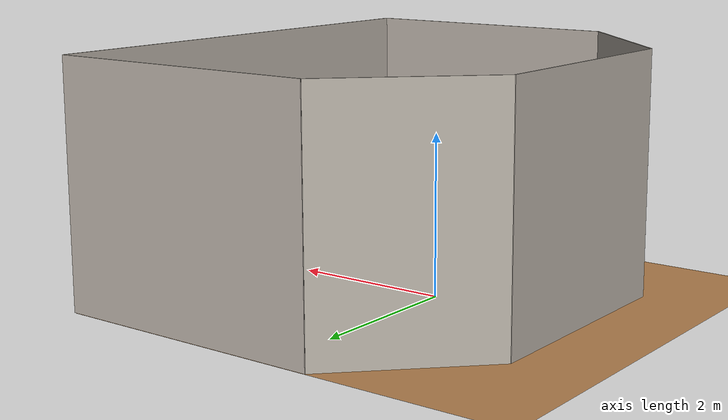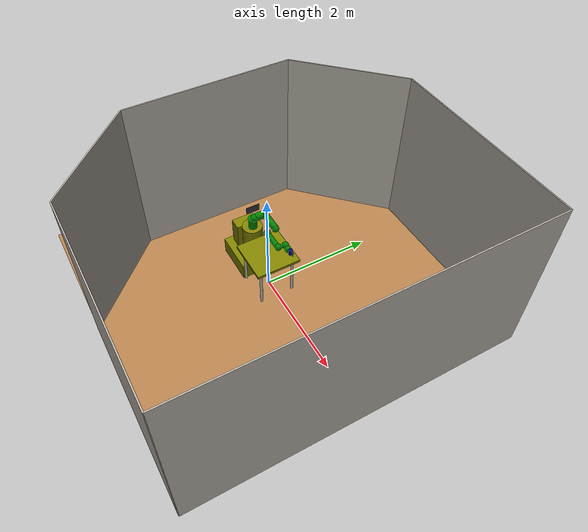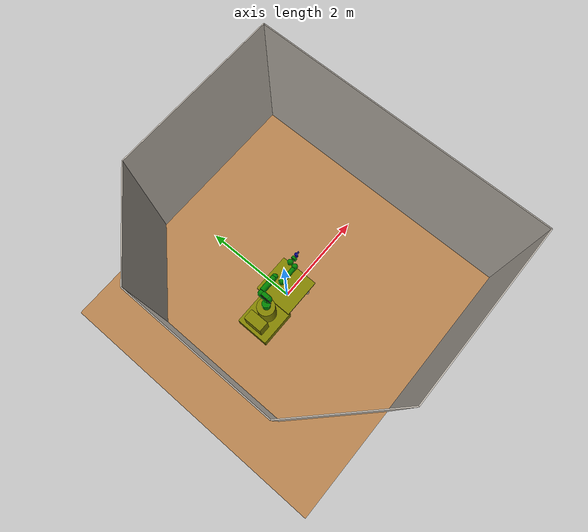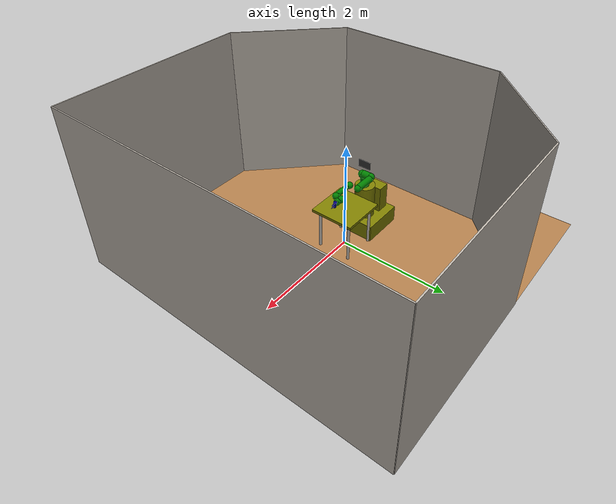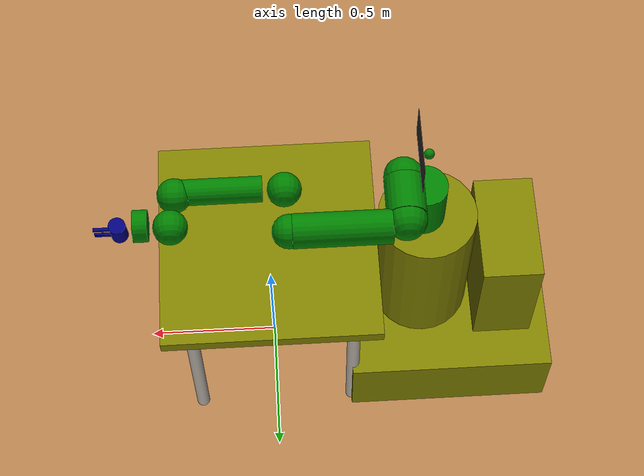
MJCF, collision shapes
<mujoco model="base">
    <compiler angle="radian" meshdir="meshes/" />
    <option impratio="20" density="1.2" viscosity="2e-05" cone="elliptic" />
    <size njmax="5000" nconmax="5000" />
    <visual>
        <map znear="0.001" />
    </visual>
    <asset>
        <texture type="skybox" builtin="gradient" rgb1="0.9 0.9 1" rgb2="0.2 0.3 0.4" width="256" height="1536" />
        <texture type="2d" name="texplane" file="/home/tarunc/anaconda3/envs/moparl/lib/python3.8/site-packages/robosuite/models/assets/arenas/../textures/wood-tiles.png" />
        <texture type="cube" name="tex-ceramic" file="/home/tarunc/anaconda3/envs/moparl/lib/python3.8/site-packages/robosuite/models/assets/arenas/../textures/ceramic.png" />
        <texture type="cube" name="tex-steel-brushed" file="/home/tarunc/anaconda3/envs/moparl/lib/python3.8/site-packages/robosuite/models/assets/arenas/../textures/steel-brushed.png" />
        <texture type="2d" name="tex-cream-plaster" file="/home/tarunc/anaconda3/envs/moparl/lib/python3.8/site-packages/robosuite/models/assets/arenas/../textures/cream-plaster.png" />
        <texture type="cube" name="textable" builtin="flat" rgb1="0.5 0.5 0.5" width="512" height="3072" />
        <texture type="cube" name="cube_redwood" file="/home/tarunc/anaconda3/envs/moparl/lib/python3.8/site-packages/robosuite/models/assets/textures/red-wood.png" />
        <material name="floorplane" texture="texplane" texuniform="true" texrepeat="2 2" specular="0" shininess="0" reflectance="0.01" />
        <material name="table_ceramic" texture="tex-ceramic" specular="0.2" shininess="0" />
        <material name="table_legs_metal" texture="tex-steel-brushed" shininess="0.8" reflectance="0.8" />
        <material name="walls_mat" texture="tex-cream-plaster" texuniform="true" texrepeat="3 3" specular="0.1" shininess="0.1" />
        <material name="table_mat" texture="textable" />
        <material name="cube_redwood_mat" texture="cube_redwood" specular="0.4" shininess="0.1" />
        <mesh name="robot0_base" file="/home/tarunc/anaconda3/envs/moparl/lib/python3.8/site-packages/robosuite/models/assets/robots/sawyer/meshes/base.stl" />
        <mesh name="robot0_l0" file="/home/tarunc/anaconda3/envs/moparl/lib/python3.8/site-packages/robosuite/models/assets/robots/sawyer/meshes/l0.stl" />
        <mesh name="robot0_head" file="/home/tarunc/anaconda3/envs/moparl/lib/python3.8/site-packages/robosuite/models/assets/robots/sawyer/meshes/head.stl" />
        <mesh name="robot0_l1" file="/home/tarunc/anaconda3/envs/moparl/lib/python3.8/site-packages/robosuite/models/assets/robots/sawyer/meshes/l1.stl" />
        <mesh name="robot0_l2" file="/home/tarunc/anaconda3/envs/moparl/lib/python3.8/site-packages/robosuite/models/assets/robots/sawyer/meshes/l2.stl" />
        <mesh name="robot0_l3" file="/home/tarunc/anaconda3/envs/moparl/lib/python3.8/site-packages/robosuite/models/assets/robots/sawyer/meshes/l3.stl" />
        <mesh name="robot0_l4" file="/home/tarunc/anaconda3/envs/moparl/lib/python3.8/site-packages/robosuite/models/assets/robots/sawyer/meshes/l4.stl" />
        <mesh name="robot0_l5" file="/home/tarunc/anaconda3/envs/moparl/lib/python3.8/site-packages/robosuite/models/assets/robots/sawyer/meshes/l5.stl" />
        <mesh name="robot0_l6" file="/home/tarunc/anaconda3/envs/moparl/lib/python3.8/site-packages/robosuite/models/assets/robots/sawyer/meshes/l6.stl" />
        <mesh name="mount0_pedestal" file="/home/tarunc/anaconda3/envs/moparl/lib/python3.8/site-packages/robosuite/models/assets/mounts/meshes/rethink_mount/pedestal.stl" />
        <mesh name="gripper0_electric_gripper_base" file="/home/tarunc/anaconda3/envs/moparl/lib/python3.8/site-packages/robosuite/models/assets/grippers/meshes/rethink_gripper/electric_gripper_base.stl" />
        <mesh name="gripper0_standard_narrow" file="/home/tarunc/anaconda3/envs/moparl/lib/python3.8/site-packages/robosuite/models/assets/grippers/meshes/rethink_gripper/standard_narrow.stl" />
        <mesh name="gripper0_half_round_tip" file="/home/tarunc/anaconda3/envs/moparl/lib/python3.8/site-packages/robosuite/models/assets/grippers/meshes/rethink_gripper/half_round_tip.stl" />
        <mesh name="gripper0_connector_plate" file="/home/tarunc/anaconda3/envs/moparl/lib/python3.8/site-packages/robosuite/models/assets/grippers/meshes/rethink_gripper/connector_plate.stl" />
    </asset>
    <worldbody>
        <geom name="floor" size="3 3 0.125" type="plane" material="floorplane" />
        <geom name="wall_leftcorner_visual" size="1.06 1.5 0.01" pos="-1.25 2.25 1.5" quat="0.653281 0.653281 0.270598 0.270598" type="box" contype="0" conaffinity="0" group="1" material="walls_mat" />
        <geom name="wall_rightcorner_visual" size="1.06 1.5 0.01" pos="-1.25 -2.25 1.5" quat="0.653281 0.653281 -0.270598 -0.270598" type="box" contype="0" conaffinity="0" group="1" material="walls_mat" />
        <geom name="wall_left_visual" size="1.75 1.5 0.01" pos="1.25 3 1.5" quat="0.707107 0.707107 0 0" type="box" contype="0" conaffinity="0" group="1" material="walls_mat" />
        <geom name="wall_right_visual" size="1.75 1.5 0.01" pos="1.25 -3 1.5" quat="0.707107 -0.707107 0 0" type="box" contype="0" conaffinity="0" group="1" material="walls_mat" />
        <geom name="wall_rear_visual" size="1.5 1.5 0.01" pos="-2 0 1.5" quat="0.5 0.5 0.5 0.5" type="box" contype="0" conaffinity="0" group="1" material="walls_mat" />
        <geom name="wall_front_visual" size="3 1.5 0.01" pos="3 0 1.5" quat="0.5 0.5 -0.5 -0.5" type="box" contype="0" conaffinity="0" group="1" material="walls_mat" />
        <camera name="frontview" pos="1.6 0 1.45" quat="0.56 0.43 0.43 0.56" />
        <camera name="birdview" pos="-0.2 0 3" quat="0.7071 0 0 0.7071" />
        <camera name="agentview" pos="0.5 0 1.35" quat="0.653 0.271 0.271 0.653" />
        <camera name="sideview" pos="-0.0565177 1.27612 1.48796" quat="0.00990507 0.00687796 0.591223 0.806418" />
        <light name="light1" pos="1 1 4" dir="0 -0.14834 -0.988936" castshadow="false" diffuse="0.8 0.8 0.8" />
        <light name="light2" pos="-3 -3 4" dir="0 -0.14834 -0.988936" castshadow="false" diffuse="0.8 0.8 0.8" />
        <body name="table" pos="0 0 0.775">
            <inertial pos="0 0 0" mass="32" diaginertia="1.71333 1.71333 3.41333" />
            <geom name="table_collision" size="0.4 0.4 0.025" type="box" rgba="0.5 0.5 0 1" />
            <geom name="table_visual" size="0.4 0.4 0.025" type="box" contype="0" conaffinity="0" group="1" material="table_ceramic" />
            <geom name="table_leg1_visual" size="0.025 0.3875" pos="0.3 0.3 -0.3875" type="cylinder" contype="0" conaffinity="0" group="1" material="table_legs_metal" />
            <geom name="table_leg2_visual" size="0.025 0.3875" pos="-0.3 0.3 -0.3875" type="cylinder" contype="0" conaffinity="0" group="1" material="table_legs_metal" />
            <geom name="table_leg3_visual" size="0.025 0.3875" pos="-0.3 -0.3 -0.3875" type="cylinder" contype="0" conaffinity="0" group="1" material="table_legs_metal" />
            <geom name="table_leg4_visual" size="0.025 0.3875" pos="0.3 -0.3 -0.3875" type="cylinder" contype="0" conaffinity="0" group="1" material="table_legs_metal" />
            <site name="table_top" pos="0 0 0.025" size="0.001" rgba="0 0 0 0" />
        </body>
        <body name="robot0_base" pos="-0.56 0 0.912">
            <inertial pos="0 0 0" mass="0" diaginertia="0 0 0" />
            <camera name="robot0_robotview" pos="1 0 0.4" quat="0.653 0.271 0.271 0.653" />
            <body name="robot0_right_arm_base_link" pos="0 0 0">
                <inertial pos="-0.0006241 -2.8025e-05 0.065404" quat="-0.209285 0.674441 0.227335 0.670558" mass="2.0687" diaginertia="0.00740351 0.00681776 0.00672942" />
                <geom name="robot0_base_vis" type="mesh" contype="0" conaffinity="0" group="1" rgba="0.5 0.1 0.1 1" mesh="robot0_base" />
                <geom name="robot0_base_col" size="0.08 0.12" pos="0 0 0.12" type="cylinder" rgba="0 0.5 0 1" />
                <body name="robot0_right_l0" pos="0 0 0.08">
                    <inertial pos="0.024366 0.010969 0.14363" quat="0.894823 0.00899958 -0.170275 0.412573" mass="5.3213" diaginertia="0.0651588 0.0510944 0.0186218" />
                    <joint name="robot0_right_j0" pos="0 0 0" axis="0 0 1" limited="true" range="-3.0503 3.0503" armature="5" damping="0.1" frictionloss="0.1" />
                    <geom name="robot0_link0_visual" type="mesh" contype="0" conaffinity="0" group="1" rgba="0.5 0.1 0.1 1" mesh="robot0_l0" />
                    <geom name="robot0_link0_collision" size="0.07" pos="0.08 0 0.23" rgba="0 0.5 0 1" />
                    <body name="robot0_head" pos="0 0 0.2965">
                        <inertial pos="0.0053207 -2.6549e-05 0.1021" quat="0.999993 7.08405e-05 -0.00359857 -0.000626247" mass="1.5795" diaginertia="0.0118334 0.00827089 0.00496574" />
                        <geom name="robot0_head_visual" type="mesh" contype="0" conaffinity="0" group="1" rgba="0.5 0.1 0.1 1" mesh="robot0_head" />
                        <geom name="robot0_head_collision" size="0.018" pos="0 0 0.08" rgba="0 0.5 0 1" />
                        <body name="robot0_screen" pos="0.03 0 0.105" quat="0.5 0.5 0.5 0.5">
                            <inertial pos="0 0 0" mass="0.0001" diaginertia="1e-08 1e-08 1e-08" />
                            <geom name="robot0_screen_visual" size="0.12 0.07 0.001" type="box" contype="0" conaffinity="0" group="1" rgba="0.2 0.2 0.2 1" />
                            <geom name="robot0_screen_collision" size="0.001" rgba="0 0.5 0 1" />
                        </body>
                        <body name="robot0_head_camera" pos="0.0228027 0 0.216572" quat="0.342813 -0.618449 0.618449 -0.342813">
                            <inertial pos="0.0228027 0 0.216572" quat="0.342813 -0.618449 0.618449 -0.342813" mass="0" diaginertia="0 0 0" />
                        </body>
                    </body>
                    <body name="robot0_right_torso_itb" pos="-0.055 0 0.22" quat="0.707107 0 -0.707107 0">
                        <inertial pos="0 0 0" mass="0.0001" diaginertia="1e-08 1e-08 1e-08" />
                    </body>
                    <body name="robot0_right_l1" pos="0.081 0.05 0.237" quat="0.5 -0.5 0.5 0.5">
                        <inertial pos="-0.0030849 -0.026811 0.092521" quat="0.424888 0.891987 0.132364 -0.0794296" mass="4.505" diaginertia="0.0224339 0.0221624 0.0097097" />
                        <joint name="robot0_right_j1" pos="0 0 0" axis="0 0 1" limited="true" range="-3.8095 2.2736" armature="2.5" damping="0.1" frictionloss="0.1" />
                        <geom name="robot0_link1_visual" type="mesh" contype="0" conaffinity="0" group="1" rgba="0.5 0.1 0.1 1" mesh="robot0_l1" />
                        <geom name="robot0_link1_collision" size="0.07" pos="0 0 0.1225" rgba="0 0.5 0 1" />
                        <body name="robot0_right_l2" pos="0 -0.14 0.1425" quat="0.707107 0.707107 0 0">
                            <inertial pos="-0.00016044 -0.014967 0.13582" quat="0.707831 -0.0524761 0.0516007 0.702537" mass="1.745" diaginertia="0.0257928 0.025506 0.00292515" />
                            <joint name="robot0_right_j2" pos="0 0 0" axis="0 0 1" limited="true" range="-3.0426 3.0426" armature="1.66667" damping="0.1" frictionloss="0.1" />
                            <geom name="robot0_link2_visual" type="mesh" contype="0" conaffinity="0" group="1" rgba="0.5 0.1 0.1 1" mesh="robot0_l2" />
                            <geom name="robot0_link2_collision" size="0.06 0.17" pos="0 0 0.08" type="cylinder" rgba="0 0.5 0 1" />
                            <body name="robot0_right_l3" pos="0 -0.042 0.26" quat="0.707107 -0.707107 0 0">
                                <inertial pos="-0.0048135 -0.0281 -0.084154" quat="0.902999 0.385391 -0.0880901 0.168247" mass="2.5097" diaginertia="0.0102404 0.0096997 0.00369622" />
                                <joint name="robot0_right_j3" pos="0 0 0" axis="0 0 1" limited="true" range="-3.0439 3.0439" armature="1.25" damping="0.1" frictionloss="0.1" />
                                <geom name="robot0_link3_visual" type="mesh" contype="0" conaffinity="0" group="1" rgba="0.5 0.1 0.1 1" mesh="robot0_l3" />
                                <geom name="robot0_link3_collision" size="0.06" pos="0 -0.01 -0.12" rgba="0 0.5 0 1" />
                                <body name="robot0_right_l4" pos="0 -0.125 -0.1265" quat="0.707107 0.707107 0 0">
                                    <inertial pos="-0.0018844 0.0069001 0.1341" quat="0.803612 0.031257 -0.0298334 0.593582" mass="1.1136" diaginertia="0.0136549 0.0135493 0.00127353" />
                                    <joint name="robot0_right_j4" pos="0 0 0" axis="0 0 1" limited="true" range="-2.9761 2.9761" armature="1" damping="0.1" frictionloss="0.1" />
                                    <geom name="robot0_link4_visual" type="mesh" contype="0" conaffinity="0" group="1" rgba="0.5 0.1 0.1 1" mesh="robot0_l4" />
                                    <geom name="robot0_link4_collision" size="0.045 0.15" pos="0 0 0.11" type="cylinder" rgba="0 0.5 0 1" />
                                    <body name="robot0_right_arm_itb" pos="-0.055 0 0.075" quat="0.707107 0 -0.707107 0">
                                        <inertial pos="0 0 0" mass="0.0001" diaginertia="1e-08 1e-08 1e-08" />
                                    </body>
                                    <body name="robot0_right_l5" pos="0 0.031 0.275" quat="0.707107 -0.707107 0 0">
                                        <inertial pos="0.0061133 -0.023697 0.076416" quat="0.404076 0.9135 0.0473125 0.00158335" mass="1.5625" diaginertia="0.00474131 0.00422857 0.00190672" />
                                        <joint name="robot0_right_j5" pos="0 0 0" axis="0 0 1" limited="true" range="-2.9761 2.9761" armature="0.833333" damping="0.2" frictionloss="0.1" />
                                        <geom name="robot0_link5_visual" type="mesh" contype="0" conaffinity="0" group="1" rgba="0.5 0.1 0.1 1" mesh="robot0_l5" />
                                        <geom name="robot0_link5_collision" size="0.06" pos="0 0 0.1" rgba="0 0.5 0 1" />
                                        <body name="robot0_right_hand_camera" pos="0.039552 -0.033 0.0695" quat="0.707107 0 0.707107 0">
                                            <inertial pos="0.039552 -0.033 0.0695" quat="0.707107 0 0.707107 0" mass="0" diaginertia="0 0 0" />
                                        </body>
                                        <body name="robot0_right_wrist" pos="0 0 0.10541" quat="0.707107 0.707107 0 0">
                                            <inertial pos="0 0 0.10541" quat="0.707107 0.707107 0 0" mass="0" diaginertia="0 0 0" />
                                        </body>
                                        <body name="robot0_right_l6" pos="0 -0.11 0.1053" quat="0.0616248 0.06163 -0.704416 0.704416">
                                            <inertial pos="-8.0726e-06 0.0085838 -0.0049566" quat="0.479044 0.515636 -0.513069 0.491322" mass="0.3292" diaginertia="0.000360258 0.000311068 0.000214974" />
                                            <joint name="robot0_right_j6" pos="0 0 0" axis="0 0 1" limited="true" range="-4.7124 4.7124" armature="0.714286" damping="0.1" frictionloss="0.1" />
                                            <geom name="robot0_link6_visual" type="mesh" contype="0" conaffinity="0" group="1" rgba="0.5 0.1 0.1 1" mesh="robot0_l6" />
                                            <geom name="robot0_link6_collision" size="0.055 0.025" pos="0 0.015 -0.01" type="cylinder" rgba="0 0.5 0 1" />
                                            <body name="robot0_right_hand" pos="0 0 0.024" quat="0.707105 0 0 0.707108">
                                                <inertial pos="0 0 0.024" quat="0.707105 0 0 0.707108" mass="0" diaginertia="0 0 0" />
                                                <site name="robot0_ee" pos="0 0 0" size="0.01" group="1" rgba="0 0 1 -1" />
                                                <site name="robot0_ee_x" pos="0 0 0" quat="0.707105 0.707108 0 0" size="0.005 0.1" group="1" type="cylinder" rgba="1 0 0 0" />
                                                <site name="robot0_ee_z" pos="0 0 0" quat="0.707105 0 0 0.707108" size="0.005 0.1" group="1" type="cylinder" rgba="0 0 1 0" />
                                                <site name="robot0_ee_y" pos="0 0 0" quat="0.707105 0 0.707108 0" size="0.005 0.1" group="1" type="cylinder" rgba="0 1 0 0" />
                                                <camera name="robot0_eye_in_hand" pos="0.05 0 0" quat="0 0.707108 0.707108 0" fovy="75" />
                                                <body name="gripper0_gripper_base" pos="0 0 0">
                                                    <inertial pos="0 0 0" quat="-0.5 0.5 0.5 0.5" mass="0.3" diaginertia="3e-08 2e-08 2e-08" />
                                                    <geom name="gripper0_connector_plate" pos="0 0 0.0018" type="mesh" contype="0" conaffinity="0" group="1" rgba="0.499 0.499 0.499 1" mesh="gripper0_connector_plate" />
                                                    <geom name="gripper0_electric_gripper_base" pos="0 0 0.0194" type="mesh" contype="0" conaffinity="0" group="1" rgba="0.499 0.499 0.499 1" mesh="gripper0_electric_gripper_base" />
                                                    <geom name="gripper0_gripper_base_col" size="0.029 0.05" pos="0.004 0 0.04" quat="0 0 0.707107 0.707107" type="cylinder" rgba="0 0 0.5 1" />
                                                    <site name="gripper0_ft_frame" pos="0 0 0" size="0.01" group="1" rgba="1 0 0 -1" />
                                                    <site name="gripper0_grip_site" pos="0 0 0.109" size="0.01" group="1" rgba="1 0 0 -0.5" />
                                                    <site name="gripper0_grip_site_cylinder" pos="0 0 0" size="0.005 10" group="1" type="cylinder" rgba="0 1 0 -0.3" />
                                                    <body name="gripper0_l_finger" pos="0 0.01 0.0444">
                                                        <inertial pos="0 0 0" quat="0 0 0 -1" mass="0.02" diaginertia="0.01 0.01 0.01" />
                                                        <joint name="gripper0_l_finger_joint" pos="0 0 0" axis="0 1 0" type="slide" limited="true" range="-0.0115 0.020833" armature="1" damping="100" frictionloss="1" />
                                                        <geom name="gripper0_l_finger" quat="0 0 0 -1" type="mesh" contype="0" conaffinity="0" group="1" rgba="0.499 0.499 0.499 1" mesh="gripper0_standard_narrow" />
                                                        <geom name="gripper0_l_finger_g0" size="0.005 0.00675 0.0375" pos="0 0.01725 0.04" quat="0 0 0 -1" type="box" contype="0" friction="0 0 0" rgba="0 0 0.5 1" />
                                                        <geom name="gripper0_l_finger_g1" size="0.005 0.025 0.0085" pos="-0.005 -0.003 0.0083" quat="0 0 0 -1" type="box" contype="0" friction="0 0 0" rgba="0 0 0.5 1" />
                                                        <body name="gripper0_l_finger_tip" pos="0 0.01725 0.075">
                                                            <inertial pos="0 0 0" quat="0 0 0 1" mass="0.01" diaginertia="0.01 0.01 0.01" />
                                                            <geom name="gripper0_l_fingertip_g0_vis" quat="0 0 0 1" type="mesh" contype="0" conaffinity="0" group="1" rgba="0.499 0.499 0.499 1" mesh="gripper0_half_round_tip" />
                                                            <geom name="gripper0_l_fingertip_g0" size="0.004 0.004 0.0185" pos="0 -0.0045 -0.015" quat="0 0 0 -1" type="box" contype="0" friction="0 0 0" rgba="0 0 0.5 1" />
                                                            <geom name="gripper0_l_fingerpad_g0" size="0.0035 0.004 0.0165" pos="0 -0.0047 -0.017" type="box" contype="0" friction="0 0 0" rgba="0 0 0.5 1" />
                                                        </body>
                                                    </body>
                                                    <body name="gripper0_r_finger" pos="0 -0.01 0.0444">
                                                        <inertial pos="0 0 0" mass="0.02" diaginertia="0.01 0.01 0.01" />
                                                        <joint name="gripper0_r_finger_joint" pos="0 0 0" axis="0 1 0" type="slide" limited="true" range="-0.020833 0.0115" armature="1" damping="100" frictionloss="1" />
                                                        <geom name="gripper0_r_finger" type="mesh" contype="0" conaffinity="0" group="1" rgba="0.499 0.499 0.499 1" mesh="gripper0_standard_narrow" />
                                                        <geom name="gripper0_r_finger_g0" size="0.005 0.00675 0.0375" pos="0 -0.01725 0.04" type="box" contype="0" friction="0 0 0" rgba="0 0 0.5 1" />
                                                        <geom name="gripper0_r_finger_g1" size="0.005 0.025 0.0085" pos="0.005 0.003 0.0083" type="box" contype="0" friction="0 0 0" rgba="0 0 0.5 1" />
                                                        <body name="gripper0_r_finger_tip" pos="0 -0.01725 0.075">
                                                            <inertial pos="0 0 0" mass="0.01" diaginertia="0.01 0.01 0.01" />
                                                            <geom name="gripper0_r_fingertip_g0_vis" type="mesh" contype="0" conaffinity="0" group="1" rgba="0.499 0.499 0.499 1" mesh="gripper0_half_round_tip" />
                                                            <geom name="gripper0_r_fingertip_g0" size="0.004 0.004 0.0185" pos="0 0.0045 -0.015" type="box" contype="0" friction="0 0 0" rgba="0 0 0.5 1" />
                                                            <geom name="gripper0_r_fingerpad_g0" size="0.0035 0.004 0.0165" pos="0 0.0047 -0.017" type="box" contype="0" friction="0 0 0" rgba="0 0 0.5 1" />
                                                        </body>
                                                    </body>
                                                </body>
                                            </body>
                                        </body>
                                    </body>
                                    <body name="robot0_right_l4_2" pos="0 0 0">
                                        <inertial pos="1e-08 1e-08 1e-08" quat="0.820473 0.339851 -0.17592 0.424708" mass="1e-08" diaginertia="1e-08 1e-08 1e-08" />
                                        <geom name="robot0_right_l4_2" size="0.06" pos="0 0.01 0.26" rgba="0 0.5 0 1" />
                                    </body>
                                </body>
                            </body>
                            <body name="robot0_right_l2_2" pos="0 0 0">
                                <inertial pos="1e-08 1e-08 1e-08" quat="0.820473 0.339851 -0.17592 0.424708" mass="1e-08" diaginertia="1e-08 1e-08 1e-08" />
                                <geom name="robot0_right_l2_2" size="0.06" pos="0 0 0.26" rgba="0 0.5 0 1" />
                            </body>
                        </body>
                        <body name="robot0_right_l1_2" pos="0 0 0">
                            <inertial pos="1e-08 1e-08 1e-08" quat="0.820473 0.339851 -0.17592 0.424708" mass="1e-08" diaginertia="1e-08 1e-08 1e-08" />
                            <geom name="robot0_right_l1_2" size="0.07 0.07" pos="0 0 0.035" type="cylinder" rgba="0 0.5 0 1" />
                        </body>
                    </body>
                </body>
            </body>
            <body name="mount0_base" pos="0 0 0.01">
                <inertial pos="0 0 0.01" mass="0" diaginertia="0 0 0" />
                <body name="mount0_controller_box" pos="0 0 0">
                    <inertial pos="-0.325 0 -0.38" mass="46.64" diaginertia="1.71363 1.27988 0.809981" />
                    <geom name="mount0_controller_box_col" size="0.11 0.2 0.265" pos="-0.325 0 -0.38" type="box" rgba="0.5 0.5 0 1" />
                </body>
                <body name="mount0_pedestal_feet" pos="0 0 0">
                    <inertial pos="-0.1225 0 -0.758" mass="167.09" diaginertia="8.16095 9.59375 15.0785" />
                    <geom name="mount0_pedestal_feet_col" size="0.385 0.35 0.155" pos="-0.1225 0 -0.758" type="box" rgba="0.5 0.5 0 1" />
                </body>
                <body name="mount0_torso" pos="0 0 0">
                    <inertial pos="0 0 0" mass="0.0001" diaginertia="1e-08 1e-08 1e-08" />
                    <geom name="mount0_torso_vis" size="0.05 0.05 0.05" pos="0 0 -0.05" type="box" contype="0" conaffinity="0" group="1" rgba="0.2 0.2 0.2 1" />
                </body>
                <body name="mount0_pedestal" pos="0 0 0">
                    <inertial pos="0 0 0" quat="0.659267 -0.259505 -0.260945 0.655692" mass="60.864" diaginertia="6.0869 5.81635 4.20915" />
                    <geom name="mount0_pedestal_vis" type="mesh" contype="0" conaffinity="0" group="1" rgba="0.2 0.2 0.2 1" mesh="mount0_pedestal" />
                    <geom name="mount0_pedestal_col" size="0.18 0.31" pos="-0.02 0 -0.29" type="cylinder" rgba="0.5 0.5 0 1" />
                </body>
            </body>
        </body>
        <body name="cube_main" pos="0 0 0">
            <inertial pos="0 0 0" mass="0.0738297" diaginertia="2.23369e-05 2.09122e-05 2.18121e-05" />
            <joint name="cube_joint0" type="free" />
            <geom name="cube_g0" size="0.0203522 0.0217279 0.0208695" type="box" rgba="0.5 0 0 1" />
            <geom name="cube_g0_vis" size="0.0203522 0.0217279 0.0208695" type="box" contype="0" conaffinity="0" group="1" material="cube_redwood_mat" />
            <site name="cube_default_site" pos="0 0 0" size="0.002" rgba="1 0 0 -1" />
        </body>
    </worldbody>
    <actuator>
        <general name="robot0_torq_right_j0" joint="robot0_right_j0" ctrllimited="true" ctrlrange="-80 80" />
        <general name="robot0_torq_right_j1" joint="robot0_right_j1" ctrllimited="true" ctrlrange="-80 80" />
        <general name="robot0_torq_right_j2" joint="robot0_right_j2" ctrllimited="true" ctrlrange="-40 40" />
        <general name="robot0_torq_right_j3" joint="robot0_right_j3" ctrllimited="true" ctrlrange="-40 40" />
        <general name="robot0_torq_right_j4" joint="robot0_right_j4" ctrllimited="true" ctrlrange="-9 9" />
        <general name="robot0_torq_right_j5" joint="robot0_right_j5" ctrllimited="true" ctrlrange="-9 9" />
        <general name="robot0_torq_right_j6" joint="robot0_right_j6" ctrllimited="true" ctrlrange="-9 9" />
        <general name="gripper0_gripper_r_finger_joint" joint="gripper0_r_finger_joint" ctrllimited="true" forcelimited="true" ctrlrange="-0.0115 0.020833" forcerange="-20 20" biastype="affine" gainprm="1000 0 0 0 0 0 0 0 0 0" biasprm="0 -1000 0 0 0 0 0 0 0 0" />
        <general name="gripper0_gripper_l_finger_joint" joint="gripper0_l_finger_joint" ctrllimited="true" forcelimited="true" ctrlrange="-0.020833 0.0115" forcerange="-20 20" biastype="affine" gainprm="1000 0 0 0 0 0 0 0 0 0" biasprm="0 -1000 0 0 0 0 0 0 0 0" />
    </actuator>
    <sensor>
        <force site="gripper0_ft_frame" name="gripper0_force_ee" />
        <torque site="gripper0_ft_frame" name="gripper0_torque_ee" />
    </sensor>
</mujoco>
